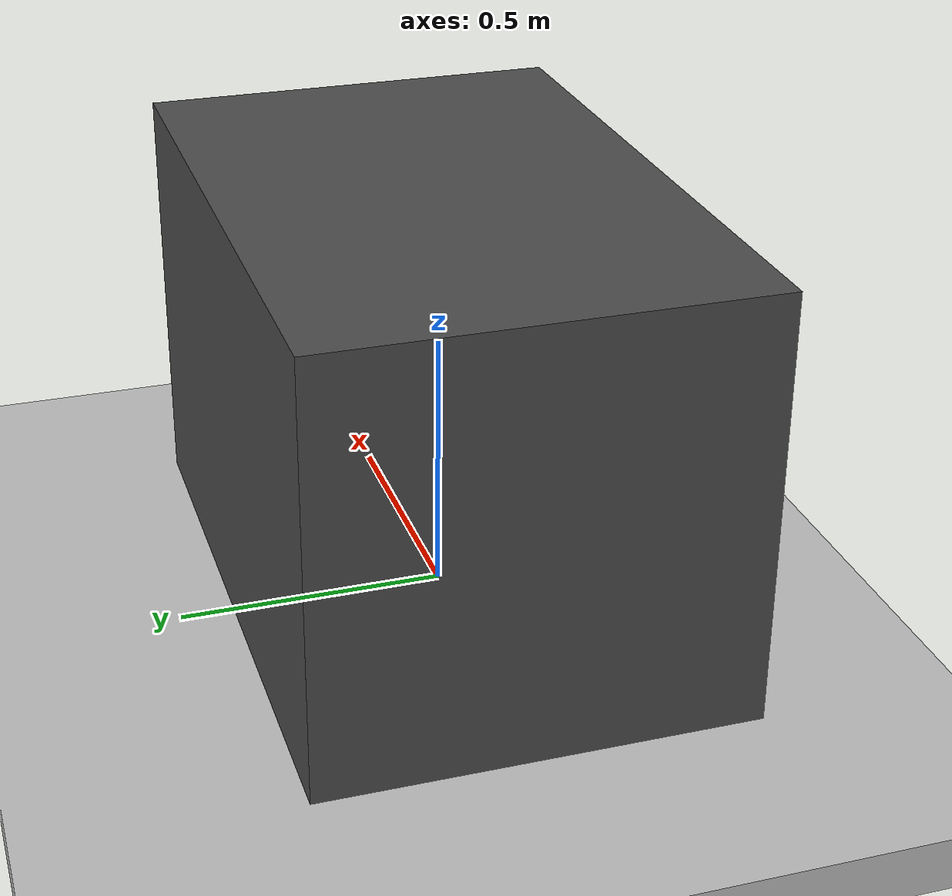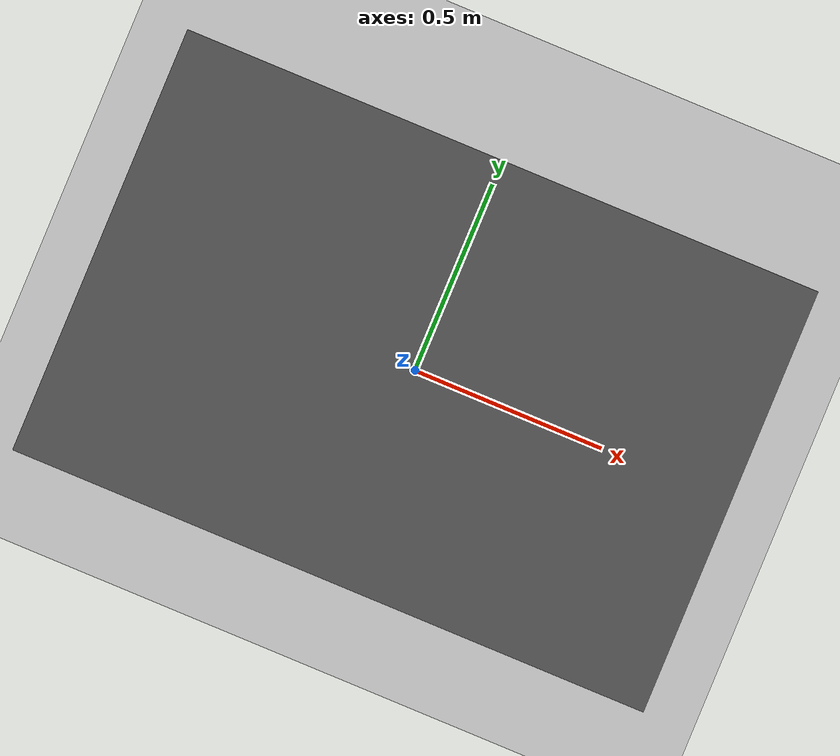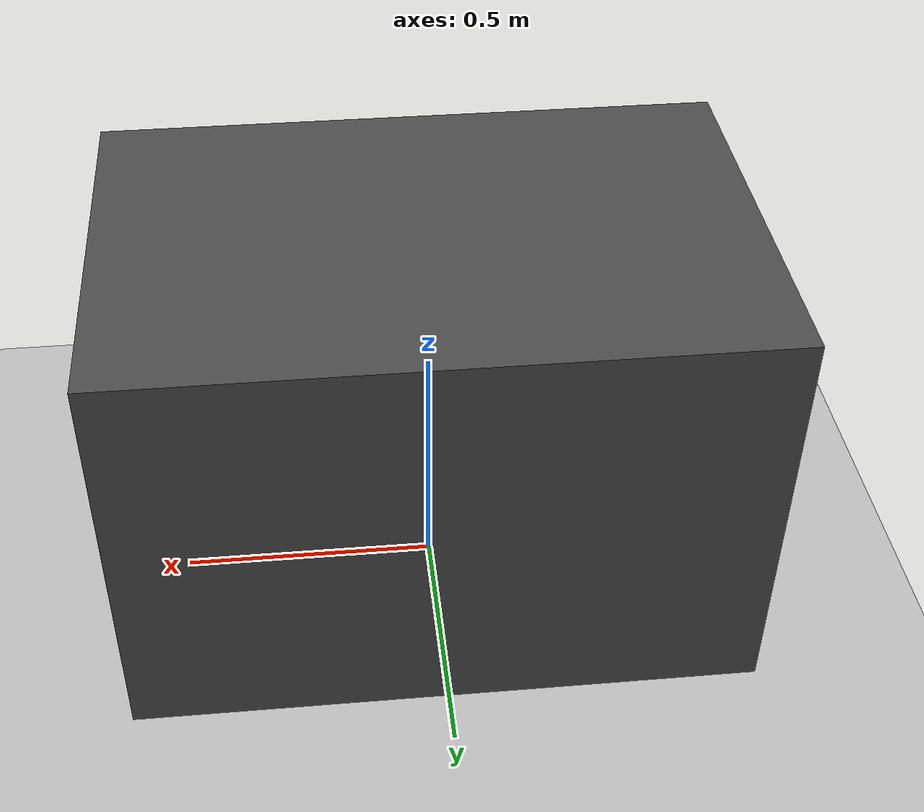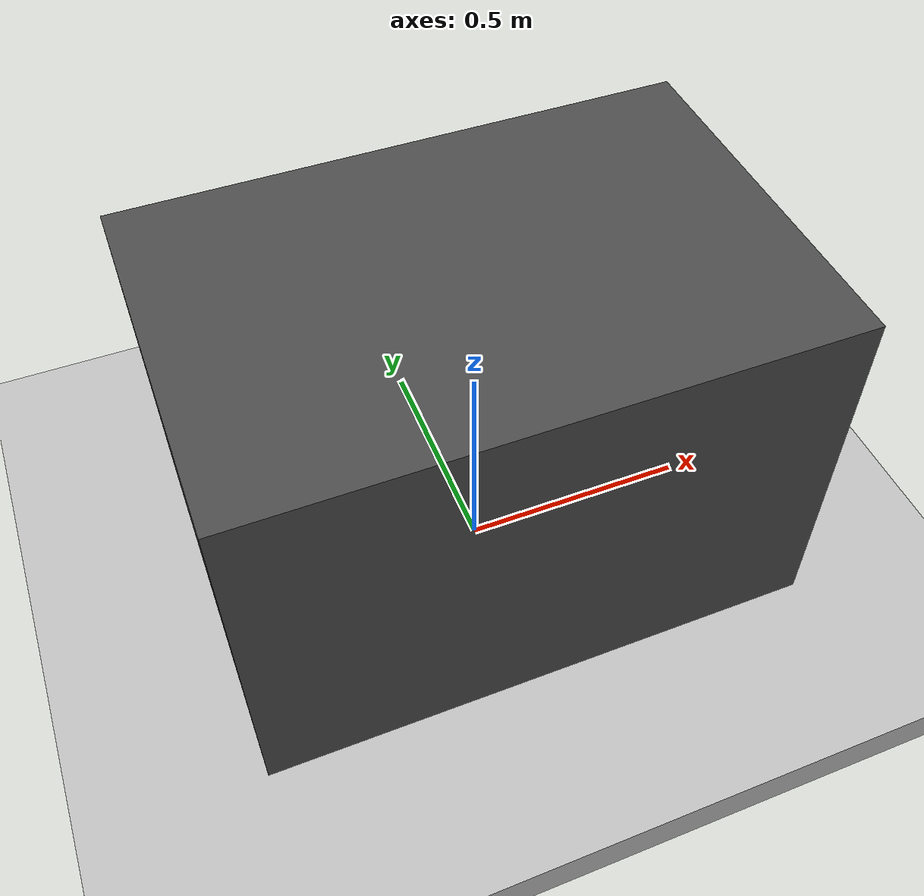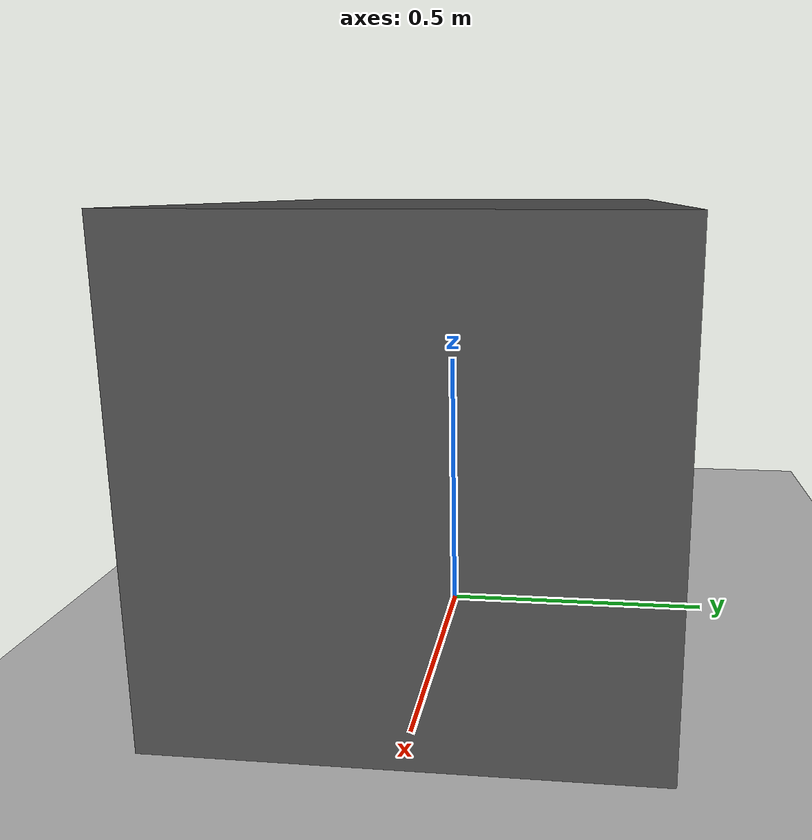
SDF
<?xml version="1.0"?>
<sdf version="1.8">

  <world name="workcell">

    <!-- Physics -->
    <physics name="physics" type="ignored">
      <max_step_size>0.001</max_step_size>
      <real_time_factor>1.0</real_time_factor>
    </physics>

    <!-- Scene -->
    <scene>
      <ambient>0.6 0.6 0.6 1</ambient>
      <background>0.8 0.8 0.8 1</background>
    </scene>

    <!-- Sun -->
    <light name="sun" type="directional">
      <cast_shadows>true</cast_shadows>
      <pose>0 0 10 0 0 0</pose>
      <diffuse>1 1 1 1</diffuse>
      <specular>0.2 0.2 0.2 1</specular>
      <direction>-0.5 0.2 -1</direction>
    </light>

    <!-- Floor -->
    <model name="floor">
      <static>true</static>

      <pose>0 0 -0.05 0 0 0</pose>

      <link name="link">

        <collision name="collision">
          <geometry>
            <box>
              <size>6 6 0.1</size>
            </box>
          </geometry>
        </collision>

        <visual name="visual">
          <geometry>
            <box>
              <size>6 6 0.1</size>
            </box>
          </geometry>

          <material>
            <ambient>0.75 0.75 0.75 0.75</ambient>
            <diffuse>0.75 0.75 0.75 1</diffuse>
          </material>

        </visual>

      </link>
    </model>

    <!-- Workbench -->
    <model name="workbench">
      <static>true</static>

      <!-- Center of an 0.8 m tall table -->
      <pose>0 0 0.4 0 0 0</pose>

      <link name="link">

        <collision name="collision">
          <geometry>
            <box>
              <size>1.2 0.8 0.8</size>
            </box>
          </geometry>
        </collision>

        <visual name="visual">
          <geometry>
            <box>
              <size>1.2 0.8 0.8</size>
            </box>
          </geometry>

          <material>
            <ambient>0.3 0.3 0.3 1</ambient>
            <diffuse>0.3 0.3 0.3 1</diffuse>
          </material>

        </visual>

      </link>
    </model>

  </world>

</sdf>
